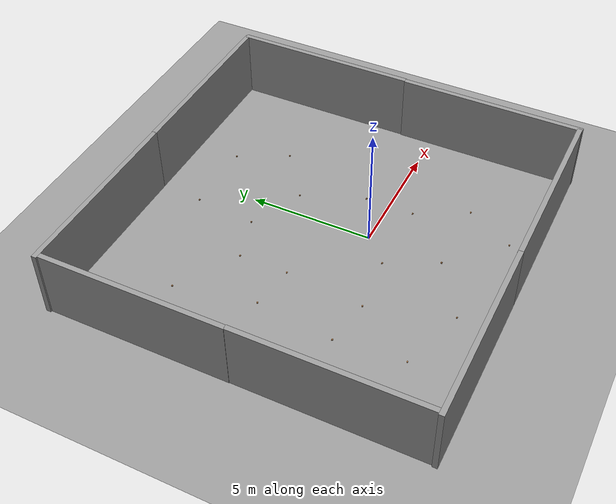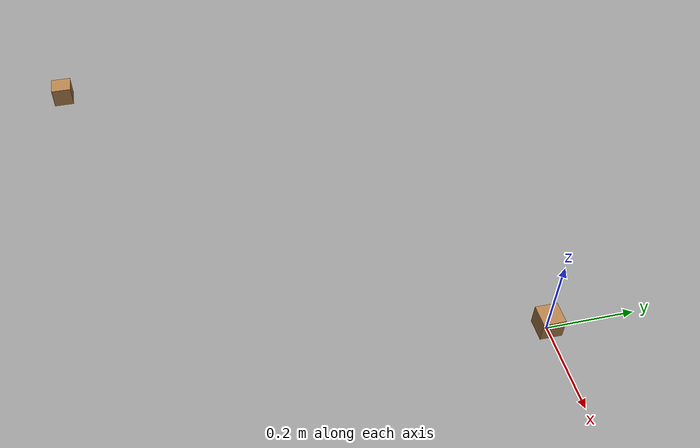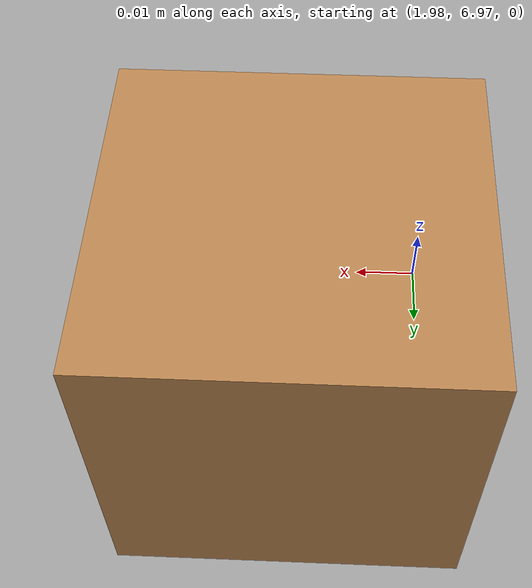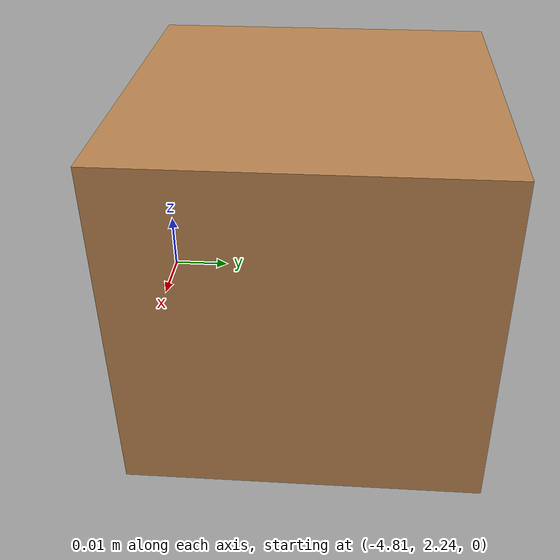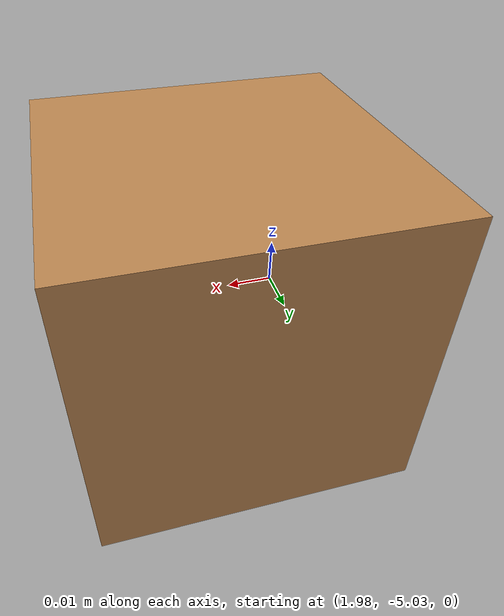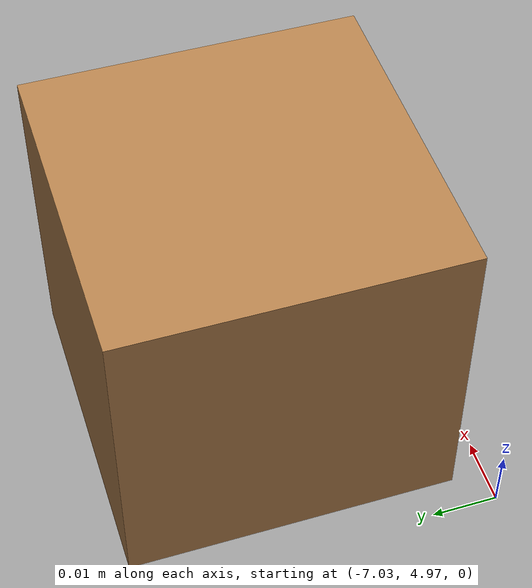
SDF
<sdf version="1.6">
 <world name="default">
  <light name="sun" type="directional">
   <pose>0 0 10 0 -0 0</pose>
   <diffuse>0.8 0.8 0.8 1</diffuse>
   <specular>0.2 0.2 0.2 1</specular>
   <attenuation>
    <range>1000</range>
    <constant>0.9</constant>
    <linear>0.01</linear>
    <quadratic>0.001</quadratic>
   </attenuation>
   <direction>0.5 0.1 -0.9</direction>
  </light>
  <scene><ambient>0.4 0.4 0.4 1</ambient><background>0.7 0.7 0.7 1</background><shadows>1</shadows></scene>
  <physics name="default_physics" default="0" type="ode">
   <max_step_size>0.01</max_step_size>
   <real_time_factor>1</real_time_factor>
   <real_time_update_rate>100</real_time_update_rate>
  </physics>
  <model name="ground_plane_0">
   <static>1</static>
   <link name="link">
    <collision name="collision">
     <geometry><plane><normal>0 0 1</normal><size>100 100</size></plane></geometry>
     <surface><friction><ode><mu>100</mu><mu2>50</mu2></ode></friction></surface>
    </collision>
    <visual name="visual">
     <cast_shadows>0</cast_shadows>
     <geometry><plane><normal>0 0 1</normal><size>100 100</size></plane></geometry>
     <material>
      <script><uri>file://media/materials/scripts/gazebo.material</uri><name>Gazebo/Grey</name></script>
     </material>
    </visual>
    <velocity_decay><linear>0</linear><angular>0</angular></velocity_decay>
   </link>
   <pose>0.497681 0 0 0 -0 0</pose>
  </model>
  <gravity>0 0 -9.8</gravity>
  <magnetic_field>6e-06 2.3e-05 -4.2e-05</magnetic_field>
  <atmosphere type="adiabatic"/>
  <spherical_coordinates>
   <surface_model>EARTH_WGS84</surface_model>
   <latitude_deg>0</latitude_deg>
   <longitude_deg>0</longitude_deg>
   <elevation>0</elevation>
   <heading_deg>0</heading_deg>
  </spherical_coordinates>
  <model name="grey_wall">
   <static>1</static>
   <link name="link">
    <pose>0 0 1.4 0 -0 0</pose>
    <collision name="collision"><geometry><box><size>7.5 0.2 2.8</size></box></geometry></collision>
    <visual name="visual">
     <cast_shadows>0</cast_shadows>
     <geometry><box><size>7.5 0.2 2.8</size></box></geometry>
     <material>
      <script>
       <uri>model://grey_wall/materials/scripts</uri>
       <uri>model://grey_wall/materials/textures</uri>
       <name>vrc/grey_wall</name>
      </script>
     </material>
    </visual>
   </link>
   <pose>2.77941 8.82009 0 0 -0 0</pose>
  </model>
  <model name="grey_wall_clone">
   <static>1</static>
   <link name="link">
    <pose>0 0 1.4 0 -0 0</pose>
    <collision name="collision"><geometry><box><size>7.5 0.2 2.8</size></box></geometry></collision>
    <visual name="visual">
     <cast_shadows>0</cast_shadows>
     <geometry><box><size>7.5 0.2 2.8</size></box></geometry>
     <material>
      <script>
       <uri>model://grey_wall/materials/scripts</uri>
       <uri>model://grey_wall/materials/textures</uri>
       <name>vrc/grey_wall</name>
      </script>
     </material>
    </visual>
   </link>
   <pose>-4.66103 8.81575 0 0 -0 0</pose>
  </model>
  <model name="grey_wall_clone_clone">
   <static>1</static>
   <link name="link">
    <pose>0 0 1.4 0 -0 0</pose>
    <collision name="collision"><geometry><box><size>7.5 0.2 2.8</size></box></geometry></collision>
    <visual name="visual">
     <cast_shadows>0</cast_shadows>
     <geometry><box><size>7.5 0.2 2.8</size></box></geometry>
     <material>
      <script>
       <uri>model://grey_wall/materials/scripts</uri>
       <uri>model://grey_wall/materials/textures</uri>
       <name>vrc/grey_wall</name>
      </script>
     </material>
    </visual>
   </link>
   <pose>-8.23984 5.15552 0 0 0 -1.56757</pose>
  </model>
  <model name="grey_wall_clone_clone_clone">
   <static>1</static>
   <link name="link">
    <pose>0 0 1.4 0 -0 0</pose>
    <collision name="collision"><geometry><box><size>7.5 0.2 2.8</size></box></geometry></collision>
    <visual name="visual">
     <cast_shadows>0</cast_shadows>
     <geometry><box><size>7.5 0.2 2.8</size></box></geometry>
     <material>
      <script>
       <uri>model://grey_wall/materials/scripts</uri>
       <uri>model://grey_wall/materials/textures</uri>
       <name>vrc/grey_wall</name>
      </script>
     </material>
    </visual>
   </link>
   <pose>-8.20187 -2.32331 0 0 0 -1.56757</pose>
  </model>
  <model name="grey_wall_clone_clone_0">
   <static>1</static>
   <link name="link">
    <pose>0 0 1.4 0 -0 0</pose>
    <collision name="collision"><geometry><box><size>7.5 0.2 2.8</size></box></geometry></collision>
    <visual name="visual">
     <cast_shadows>0</cast_shadows>
     <geometry><box><size>7.5 0.2 2.8</size></box></geometry>
     <material>
      <script>
       <uri>model://grey_wall/materials/scripts</uri>
       <uri>model://grey_wall/materials/textures</uri>
       <name>vrc/grey_wall</name>
      </script>
     </material>
    </visual>
   </link>
   <pose>-4.5932 -6.01124 0 0 -0 0</pose>
  </model>
  <model name="grey_wall_clone_clone_1">
   <static>1</static>
   <link name="link">
    <pose>0 0 1.4 0 -0 0</pose>
    <collision name="collision"><geometry><box><size>7.5 0.2 2.8</size></box></geometry></collision>
    <visual name="visual">
     <cast_shadows>0</cast_shadows>
     <geometry><box><size>7.5 0.2 2.8</size></box></geometry>
     <material>
      <script>
       <uri>model://grey_wall/materials/scripts</uri>
       <uri>model://grey_wall/materials/textures</uri>
       <name>vrc/grey_wall</name>
      </script>
     </material>
    </visual>
   </link>
   <pose>2.78521 -6.00736 0 0 -0 0</pose>
  </model>
  <model name="grey_wall_clone_clone_clone_clone">
   <static>1</static>
   <link name="link">
    <pose>0 0 1.4 0 -0 0</pose>
    <collision name="collision"><geometry><box><size>7.5 0.2 2.8</size></box></geometry></collision>
    <visual name="visual">
     <cast_shadows>0</cast_shadows>
     <geometry><box><size>7.5 0.2 2.8</size></box></geometry>
     <material>
      <script>
       <uri>model://grey_wall/materials/scripts</uri>
       <uri>model://grey_wall/materials/textures</uri>
       <name>vrc/grey_wall</name>
      </script>
     </material>
    </visual>
   </link>
   <pose>6.50789 -2.37357 0 0 0 -1.56757</pose>
  </model>
  <model name="grey_wall_clone_clone_clone_clone_0">
   <static>1</static>
   <link name="link">
    <pose>0 0 1.4 0 -0 0</pose>
    <collision name="collision"><geometry><box><size>7.5 0.2 2.8</size></box></geometry></collision>
    <visual name="visual">
     <cast_shadows>0</cast_shadows>
     <geometry><box><size>7.5 0.2 2.8</size></box></geometry>
     <material>
      <script>
       <uri>model://grey_wall/materials/scripts</uri>
       <uri>model://grey_wall/materials/textures</uri>
       <name>vrc/grey_wall</name>
      </script>
     </material>
    </visual>
   </link>
   <pose>6.51737 5.11667 0 0 0 -1.56757</pose>
  </model>
  <model name="wood_cube_5cm">
   <link name="link">
    <pose>0 0 0.025 0 -0 0</pose>
    <inertial>
     <mass>0.0565</mass>
     <inertia>
      <ixx>2.35417e-05</ixx>
      <ixy>0</ixy>
      <ixz>0</ixz>
      <iyy>2.35417e-05</iyy>
      <iyz>0</iyz>
      <izz>2.35417e-05</izz>
     </inertia>
    </inertial>
    <collision name="collision">
     <geometry><box><size>0.05 0.05 0.05</size></box></geometry>
     <surface>
      <contact>
       <poissons_ratio>0.347</poissons_ratio>
       <elastic_modulus>8.8e+09</elastic_modulus>
       <ode><kp>100000</kp><kd>1</kd><max_vel>1</max_vel><min_depth>0.001</min_depth></ode>
      </contact>
      <friction>
       <torsional>
        <coefficient>1</coefficient>
        <use_patch_radius>0</use_patch_radius>
        <surface_radius>0.05</surface_radius>
       </torsional>
      </friction>
     </surface>
    </collision>
    <visual name="visual">
     <geometry><box><size>0.05 0.05 0.05</size></box></geometry>
     <material>
      <script><uri>file://media/materials/scripts/gazebo.material</uri><name>Gazebo/Wood</name></script>
     </material>
    </visual>
   </link>
   <pose>-5.43837 5.47956 -0.001001 0 -0 0</pose>
  </model>
  <model name="wood_cube_5cm_clone">
   <link name="link">
    <pose>0 0 0.025 0 -0 0</pose>
    <inertial>
     <mass>0.0565</mass>
     <inertia>
      <ixx>2.35417e-05</ixx>
      <ixy>0</ixy>
      <ixz>0</ixz>
      <iyy>2.35417e-05</iyy>
      <iyz>0</iyz>
      <izz>2.35417e-05</izz>
     </inertia>
    </inertial>
    <collision name="collision">
     <geometry><box><size>0.05 0.05 0.05</size></box></geometry>
     <surface>
      <contact>
       <poissons_ratio>0.347</poissons_ratio>
       <elastic_modulus>8.8e+09</elastic_modulus>
       <ode><kp>100000</kp><kd>1</kd><max_vel>1</max_vel><min_depth>0.001</min_depth></ode>
      </contact>
      <friction>
       <torsional>
        <coefficient>1</coefficient>
        <use_patch_radius>0</use_patch_radius>
        <surface_radius>0.05</surface_radius>
       </torsional>
      </friction>
     </surface>
    </collision>
    <visual name="visual">
     <geometry><box><size>0.05 0.05 0.05</size></box></geometry>
     <material>
      <script><uri>file://media/materials/scripts/gazebo.material</uri><name>Gazebo/Wood</name></script>
     </material>
    </visual>
   </link>
   <pose>-4.78134 2.26895 -0.001001 0 -0 0</pose>
  </model>
  <model name="wood_cube_5cm_clone_0">
   <link name="link">
    <pose>0 0 0.025 0 -0 0</pose>
    <inertial>
     <mass>0.0565</mass>
     <inertia>
      <ixx>2.35417e-05</ixx>
      <ixy>0</ixy>
      <ixz>0</ixz>
      <iyy>2.35417e-05</iyy>
      <iyz>0</iyz>
      <izz>2.35417e-05</izz>
     </inertia>
    </inertial>
    <collision name="collision">
     <geometry><box><size>0.05 0.05 0.05</size></box></geometry>
     <surface>
      <contact>
       <poissons_ratio>0.347</poissons_ratio>
       <elastic_modulus>8.8e+09</elastic_modulus>
       <ode><kp>100000</kp><kd>1</kd><max_vel>1</max_vel><min_depth>0.001</min_depth></ode>
      </contact>
      <friction>
       <torsional>
        <coefficient>1</coefficient>
        <use_patch_radius>0</use_patch_radius>
        <surface_radius>0.05</surface_radius>
       </torsional>
      </friction>
     </surface>
    </collision>
    <visual name="visual">
     <geometry><box><size>0.05 0.05 0.05</size></box></geometry>
     <material>
      <script><uri>file://media/materials/scripts/gazebo.material</uri><name>Gazebo/Wood</name></script>
     </material>
    </visual>
   </link>
   <pose>-4.89154 -3.65071 -0.001001 0 -0 0</pose>
  </model>
  <model name="wood_cube_5cm_clone_1">
   <link name="link">
    <pose>0 0 0.025 0 -0 0</pose>
    <inertial>
     <mass>0.0565</mass>
     <inertia>
      <ixx>2.35417e-05</ixx>
      <ixy>0</ixy>
      <ixz>0</ixz>
      <iyy>2.35417e-05</iyy>
      <iyz>0</iyz>
      <izz>2.35417e-05</izz>
     </inertia>
    </inertial>
    <collision name="collision">
     <geometry><box><size>0.05 0.05 0.05</size></box></geometry>
     <surface>
      <contact>
       <poissons_ratio>0.347</poissons_ratio>
       <elastic_modulus>8.8e+09</elastic_modulus>
       <ode><kp>100000</kp><kd>1</kd><max_vel>1</max_vel><min_depth>0.001</min_depth></ode>
      </contact>
      <friction>
       <torsional>
        <coefficient>1</coefficient>
        <use_patch_radius>0</use_patch_radius>
        <surface_radius>0.05</surface_radius>
       </torsional>
      </friction>
     </surface>
    </collision>
    <visual name="visual">
     <geometry><box><size>0.05 0.05 0.05</size></box></geometry>
     <material>
      <script><uri>file://media/materials/scripts/gazebo.material</uri><name>Gazebo/Wood</name></script>
     </material>
    </visual>
   </link>
   <pose>-2.28675 -4.47799 -0.001001 0 -0 0</pose>
  </model>
  <model name="wood_cube_5cm_clone_2">
   <link name="link">
    <pose>0 0 0.025 0 -0 0</pose>
    <inertial>
     <mass>0.0565</mass>
     <inertia>
      <ixx>2.35417e-05</ixx>
      <ixy>0</ixy>
      <ixz>0</ixz>
      <iyy>2.35417e-05</iyy>
      <iyz>0</iyz>
      <izz>2.35417e-05</izz>
     </inertia>
    </inertial>
    <collision name="collision">
     <geometry><box><size>0.05 0.05 0.05</size></box></geometry>
     <surface>
      <contact>
       <poissons_ratio>0.347</poissons_ratio>
       <elastic_modulus>8.8e+09</elastic_modulus>
       <ode><kp>100000</kp><kd>1</kd><max_vel>1</max_vel><min_depth>0.001</min_depth></ode>
      </contact>
      <friction>
       <torsional>
        <coefficient>1</coefficient>
        <use_patch_radius>0</use_patch_radius>
        <surface_radius>0.05</surface_radius>
       </torsional>
      </friction>
     </surface>
    </collision>
    <visual name="visual">
     <geometry><box><size>0.05 0.05 0.05</size></box></geometry>
     <material>
      <script><uri>file://media/materials/scripts/gazebo.material</uri><name>Gazebo/Wood</name></script>
     </material>
    </visual>
   </link>
   <pose>-3.2656 -1.215 -0.001001 0 -0 0</pose>
  </model>
  <model name="wood_cube_5cm_clone_3">
   <link name="link">
    <pose>0 0 0.025 0 -0 0</pose>
    <inertial>
     <mass>0.0565</mass>
     <inertia>
      <ixx>2.35417e-05</ixx>
      <ixy>0</ixy>
      <ixz>0</ixz>
      <iyy>2.35417e-05</iyy>
      <iyz>0</iyz>
      <izz>2.35417e-05</izz>
     </inertia>
    </inertial>
    <collision name="collision">
     <geometry><box><size>0.05 0.05 0.05</size></box></geometry>
     <surface>
      <contact>
       <poissons_ratio>0.347</poissons_ratio>
       <elastic_modulus>8.8e+09</elastic_modulus>
       <ode><kp>100000</kp><kd>1</kd><max_vel>1</max_vel><min_depth>0.001</min_depth></ode>
      </contact>
      <friction>
       <torsional>
        <coefficient>1</coefficient>
        <use_patch_radius>0</use_patch_radius>
        <surface_radius>0.05</surface_radius>
       </torsional>
      </friction>
     </surface>
    </collision>
    <visual name="visual">
     <geometry><box><size>0.05 0.05 0.05</size></box></geometry>
     <material>
      <script><uri>file://media/materials/scripts/gazebo.material</uri><name>Gazebo/Wood</name></script>
     </material>
    </visual>
   </link>
   <pose>-1.2102 4.51377 -0.001001 0 -0 0</pose>
  </model>
  <model name="wood_cube_5cm_clone_4">
   <link name="link">
    <pose>0 0 0.025 0 -0 0</pose>
    <inertial>
     <mass>0.0565</mass>
     <inertia>
      <ixx>2.35417e-05</ixx>
      <ixy>0</ixy>
      <ixz>0</ixz>
      <iyy>2.35417e-05</iyy>
      <iyz>0</iyz>
      <izz>2.35417e-05</izz>
     </inertia>
    </inertial>
    <collision name="collision">
     <geometry><box><size>0.05 0.05 0.05</size></box></geometry>
     <surface>
      <contact>
       <poissons_ratio>0.347</poissons_ratio>
       <elastic_modulus>8.8e+09</elastic_modulus>
       <ode><kp>100000</kp><kd>1</kd><max_vel>1</max_vel><min_depth>0.001</min_depth></ode>
      </contact>
      <friction>
       <torsional>
        <coefficient>1</coefficient>
        <use_patch_radius>0</use_patch_radius>
        <surface_radius>0.05</surface_radius>
       </torsional>
      </friction>
     </surface>
    </collision>
    <visual name="visual">
     <geometry><box><size>0.05 0.05 0.05</size></box></geometry>
     <material>
      <script><uri>file://media/materials/scripts/gazebo.material</uri><name>Gazebo/Wood</name></script>
     </material>
    </visual>
   </link>
   <pose>-3 4 -0.001001 0 -0 0</pose>
  </model>
  <model name="wood_cube_5cm_clone_5">
   <link name="link">
    <pose>0 0 0.025 0 -0 0</pose>
    <inertial>
     <mass>0.0565</mass>
     <inertia>
      <ixx>2.35417e-05</ixx>
      <ixy>0</ixy>
      <ixz>0</ixz>
      <iyy>2.35417e-05</iyy>
      <iyz>0</iyz>
      <izz>2.35417e-05</izz>
     </inertia>
    </inertial>
    <collision name="collision">
     <geometry><box><size>0.05 0.05 0.05</size></box></geometry>
     <surface>
      <contact>
       <poissons_ratio>0.347</poissons_ratio>
       <elastic_modulus>8.8e+09</elastic_modulus>
       <ode><kp>100000</kp><kd>1</kd><max_vel>1</max_vel><min_depth>0.001</min_depth></ode>
      </contact>
      <friction>
       <torsional>
        <coefficient>1</coefficient>
        <use_patch_radius>0</use_patch_radius>
        <surface_radius>0.05</surface_radius>
       </torsional>
      </friction>
     </surface>
    </collision>
    <visual name="visual">
     <geometry><box><size>0.05 0.05 0.05</size></box></geometry>
     <material>
      <script><uri>file://media/materials/scripts/gazebo.material</uri><name>Gazebo/Wood</name></script>
     </material>
    </visual>
   </link>
   <pose>0 0 -0.001001 0 -0 0</pose>
  </model>
  <model name="wood_cube_5cm_clone_6">
   <link name="link">
    <pose>0 0 0.025 0 -0 0</pose>
    <inertial>
     <mass>0.0565</mass>
     <inertia>
      <ixx>2.35417e-05</ixx>
      <ixy>0</ixy>
      <ixz>0</ixz>
      <iyy>2.35417e-05</iyy>
      <iyz>0</iyz>
      <izz>2.35417e-05</izz>
     </inertia>
    </inertial>
    <collision name="collision">
     <geometry><box><size>0.05 0.05 0.05</size></box></geometry>
     <surface>
      <contact>
       <poissons_ratio>0.347</poissons_ratio>
       <elastic_modulus>8.8e+09</elastic_modulus>
       <ode><kp>100000</kp><kd>1</kd><max_vel>1</max_vel><min_depth>0.001</min_depth></ode>
      </contact>
      <friction>
       <torsional>
        <coefficient>1</coefficient>
        <use_patch_radius>0</use_patch_radius>
        <surface_radius>0.05</surface_radius>
       </torsional>
      </friction>
     </surface>
    </collision>
    <visual name="visual">
     <geometry><box><size>0.05 0.05 0.05</size></box></geometry>
     <material>
      <script><uri>file://media/materials/scripts/gazebo.material</uri><name>Gazebo/Wood</name></script>
     </material>
    </visual>
   </link>
   <pose>0 -3 -0.001001 0 -0 0</pose>
  </model>
  <model name="wood_cube_5cm_clone_7">
   <link name="link">
    <pose>0 0 0.025 0 -0 0</pose>
    <inertial>
     <mass>0.0565</mass>
     <inertia>
      <ixx>2.35417e-05</ixx>
      <ixy>0</ixy>
      <ixz>0</ixz>
      <iyy>2.35417e-05</iyy>
      <iyz>0</iyz>
      <izz>2.35417e-05</izz>
     </inertia>
    </inertial>
    <collision name="collision">
     <geometry><box><size>0.05 0.05 0.05</size></box></geometry>
     <surface>
      <contact>
       <poissons_ratio>0.347</poissons_ratio>
       <elastic_modulus>8.8e+09</elastic_modulus>
       <ode><kp>100000</kp><kd>1</kd><max_vel>1</max_vel><min_depth>0.001</min_depth></ode>
      </contact>
      <friction>
       <torsional>
        <coefficient>1</coefficient>
        <use_patch_radius>0</use_patch_radius>
        <surface_radius>0.05</surface_radius>
       </torsional>
      </friction>
     </surface>
    </collision>
    <visual name="visual">
     <geometry><box><size>0.05 0.05 0.05</size></box></geometry>
     <material>
      <script><uri>file://media/materials/scripts/gazebo.material</uri><name>Gazebo/Wood</name></script>
     </material>
    </visual>
   </link>
   <pose>2 -5 -0.001001 0 -0 0</pose>
  </model>
  <model name="wood_cube_5cm_clone_8">
   <link name="link">
    <pose>0 0 0.025 0 -0 0</pose>
    <inertial>
     <mass>0.0565</mass>
     <inertia>
      <ixx>2.35417e-05</ixx>
      <ixy>0</ixy>
      <ixz>0</ixz>
      <iyy>2.35417e-05</iyy>
      <iyz>0</iyz>
      <izz>2.35417e-05</izz>
     </inertia>
    </inertial>
    <collision name="collision">
     <geometry><box><size>0.05 0.05 0.05</size></box></geometry>
     <surface>
      <contact>
       <poissons_ratio>0.347</poissons_ratio>
       <elastic_modulus>8.8e+09</elastic_modulus>
       <ode><kp>100000</kp><kd>1</kd><max_vel>1</max_vel><min_depth>0.001</min_depth></ode>
      </contact>
      <friction>
       <torsional>
        <coefficient>1</coefficient>
        <use_patch_radius>0</use_patch_radius>
        <surface_radius>0.05</surface_radius>
       </torsional>
      </friction>
     </surface>
    </collision>
    <visual name="visual">
     <geometry><box><size>0.05 0.05 0.05</size></box></geometry>
     <material>
      <script><uri>file://media/materials/scripts/gazebo.material</uri><name>Gazebo/Wood</name></script>
     </material>
    </visual>
   </link>
   <pose>2 -1 -0.001001 0 -0 0</pose>
  </model>
  <model name="wood_cube_5cm_clone_9">
   <link name="link">
    <pose>0 0 0.025 0 -0 0</pose>
    <inertial>
     <mass>0.0565</mass>
     <inertia>
      <ixx>2.35417e-05</ixx>
      <ixy>0</ixy>
      <ixz>0</ixz>
      <iyy>2.35417e-05</iyy>
      <iyz>0</iyz>
      <izz>2.35417e-05</izz>
     </inertia>
    </inertial>
    <collision name="collision">
     <geometry><box><size>0.05 0.05 0.05</size></box></geometry>
     <surface>
      <contact>
       <poissons_ratio>0.347</poissons_ratio>
       <elastic_modulus>8.8e+09</elastic_modulus>
       <ode><kp>100000</kp><kd>1</kd><max_vel>1</max_vel><min_depth>0.001</min_depth></ode>
      </contact>
      <friction>
       <torsional>
        <coefficient>1</coefficient>
        <use_patch_radius>0</use_patch_radius>
        <surface_radius>0.05</surface_radius>
       </torsional>
      </friction>
     </surface>
    </collision>
    <visual name="visual">
     <geometry><box><size>0.05 0.05 0.05</size></box></geometry>
     <material>
      <script><uri>file://media/materials/scripts/gazebo.material</uri><name>Gazebo/Wood</name></script>
     </material>
    </visual>
   </link>
   <pose>-1 -1 -0.001001 0 -0 0</pose>
  </model>
  <model name="wood_cube_5cm_clone_10">
   <link name="link">
    <pose>0 0 0.025 0 -0 0</pose>
    <inertial>
     <mass>0.0565</mass>
     <inertia>
      <ixx>2.35417e-05</ixx>
      <ixy>0</ixy>
      <ixz>0</ixz>
      <iyy>2.35417e-05</iyy>
      <iyz>0</iyz>
      <izz>2.35417e-05</izz>
     </inertia>
    </inertial>
    <collision name="collision">
     <geometry><box><size>0.05 0.05 0.05</size></box></geometry>
     <surface>
      <contact>
       <poissons_ratio>0.347</poissons_ratio>
       <elastic_modulus>8.8e+09</elastic_modulus>
       <ode><kp>100000</kp><kd>1</kd><max_vel>1</max_vel><min_depth>0.001</min_depth></ode>
      </contact>
      <friction>
       <torsional>
        <coefficient>1</coefficient>
        <use_patch_radius>0</use_patch_radius>
        <surface_radius>0.05</surface_radius>
       </torsional>
      </friction>
     </surface>
    </collision>
    <visual name="visual">
     <geometry><box><size>0.05 0.05 0.05</size></box></geometry>
     <material>
      <script><uri>file://media/materials/scripts/gazebo.material</uri><name>Gazebo/Wood</name></script>
     </material>
    </visual>
   </link>
   <pose>-3 2 -0.001001 0 -0 0</pose>
  </model>
  <model name="wood_cube_5cm_clone_11">
   <link name="link">
    <pose>0 0 0.025 0 -0 0</pose>
    <inertial>
     <mass>0.0565</mass>
     <inertia>
      <ixx>2.35417e-05</ixx>
      <ixy>0</ixy>
      <ixz>0</ixz>
      <iyy>2.35417e-05</iyy>
      <iyz>0</iyz>
      <izz>2.35417e-05</izz>
     </inertia>
    </inertial>
    <collision name="collision">
     <geometry><box><size>0.05 0.05 0.05</size></box></geometry>
     <surface>
      <contact>
       <poissons_ratio>0.347</poissons_ratio>
       <elastic_modulus>8.8e+09</elastic_modulus>
       <ode><kp>100000</kp><kd>1</kd><max_vel>1</max_vel><min_depth>0.001</min_depth></ode>
      </contact>
      <friction>
       <torsional>
        <coefficient>1</coefficient>
        <use_patch_radius>0</use_patch_radius>
        <surface_radius>0.05</surface_radius>
       </torsional>
      </friction>
     </surface>
    </collision>
    <visual name="visual">
     <geometry><box><size>0.05 0.05 0.05</size></box></geometry>
     <material>
      <script><uri>file://media/materials/scripts/gazebo.material</uri><name>Gazebo/Wood</name></script>
     </material>
    </visual>
   </link>
   <pose>1 3.50477 -0.001001 0 -0 0</pose>
  </model>
  <model name="wood_cube_5cm_clone_12">
   <link name="link">
    <pose>0 0 0.025 0 -0 0</pose>
    <inertial>
     <mass>0.0565</mass>
     <inertia>
      <ixx>2.35417e-05</ixx>
      <ixy>0</ixy>
      <ixz>0</ixz>
      <iyy>2.35417e-05</iyy>
      <iyz>0</iyz>
      <izz>2.35417e-05</izz>
     </inertia>
    </inertial>
    <collision name="collision">
     <geometry><box><size>0.05 0.05 0.05</size></box></geometry>
     <surface>
      <contact>
       <poissons_ratio>0.347</poissons_ratio>
       <elastic_modulus>8.8e+09</elastic_modulus>
       <ode><kp>100000</kp><kd>1</kd><max_vel>1</max_vel><min_depth>0.001</min_depth></ode>
      </contact>
      <friction>
       <torsional>
        <coefficient>1</coefficient>
        <use_patch_radius>0</use_patch_radius>
        <surface_radius>0.05</surface_radius>
       </torsional>
      </friction>
     </surface>
    </collision>
    <visual name="visual">
     <geometry><box><size>0.05 0.05 0.05</size></box></geometry>
     <material>
      <script><uri>file://media/materials/scripts/gazebo.material</uri><name>Gazebo/Wood</name></script>
     </material>
    </visual>
   </link>
   <pose>-1 7 -0.001001 0 -0 0</pose>
  </model>
  <model name="wood_cube_5cm_clone_13">
   <link name="link">
    <pose>0 0 0.025 0 -0 0</pose>
    <inertial>
     <mass>0.0565</mass>
     <inertia>
      <ixx>2.35417e-05</ixx>
      <ixy>0</ixy>
      <ixz>0</ixz>
      <iyy>2.35417e-05</iyy>
      <iyz>0</iyz>
      <izz>2.35417e-05</izz>
     </inertia>
    </inertial>
    <collision name="collision">
     <geometry><box><size>0.05 0.05 0.05</size></box></geometry>
     <surface>
      <contact>
       <poissons_ratio>0.347</poissons_ratio>
       <elastic_modulus>8.8e+09</elastic_modulus>
       <ode><kp>100000</kp><kd>1</kd><max_vel>1</max_vel><min_depth>0.001</min_depth></ode>
      </contact>
      <friction>
       <torsional>
        <coefficient>1</coefficient>
        <use_patch_radius>0</use_patch_radius>
        <surface_radius>0.05</surface_radius>
       </torsional>
      </friction>
     </surface>
    </collision>
    <visual name="visual">
     <geometry><box><size>0.05 0.05 0.05</size></box></geometry>
     <material>
      <script><uri>file://media/materials/scripts/gazebo.material</uri><name>Gazebo/Wood</name></script>
     </material>
    </visual>
   </link>
   <pose>2 7 -0.001001 0 -0 0</pose>
  </model>
  <model name="wood_cube_5cm_clone_14">
   <link name="link">
    <pose>0 0 0.025 0 -0 0</pose>
    <inertial>
     <mass>0.0565</mass>
     <inertia>
      <ixx>2.35417e-05</ixx>
      <ixy>0</ixy>
      <ixz>0</ixz>
      <iyy>2.35417e-05</iyy>
      <iyz>0</iyz>
      <izz>2.35417e-05</izz>
     </inertia>
    </inertial>
    <collision name="collision">
     <geometry><box><size>0.05 0.05 0.05</size></box></geometry>
     <surface>
      <contact>
       <poissons_ratio>0.347</poissons_ratio>
       <elastic_modulus>8.8e+09</elastic_modulus>
       <ode><kp>100000</kp><kd>1</kd><max_vel>1</max_vel><min_depth>0.001</min_depth></ode>
      </contact>
      <friction>
       <torsional>
        <coefficient>1</coefficient>
        <use_patch_radius>0</use_patch_radius>
        <surface_radius>0.05</surface_radius>
       </torsional>
      </friction>
     </surface>
    </collision>
    <visual name="visual">
     <geometry><box><size>0.05 0.05 0.05</size></box></geometry>
     <material>
      <script><uri>file://media/materials/scripts/gazebo.material</uri><name>Gazebo/Wood</name></script>
     </material>
    </visual>
   </link>
   <pose>3 5 -0.000935 8.6e-05 -8.7e-05 -0</pose>
  </model>
  <model name="wood_cube_5cm_clone_15">
   <link name="link">
    <pose>0 0 0.025 0 -0 0</pose>
    <inertial>
     <mass>0.0565</mass>
     <inertia>
      <ixx>2.35417e-05</ixx>
      <ixy>0</ixy>
      <ixz>0</ixz>
      <iyy>2.35417e-05</iyy>
      <iyz>0</iyz>
      <izz>2.35417e-05</izz>
     </inertia>
    </inertial>
    <collision name="collision">
     <geometry><box><size>0.05 0.05 0.05</size></box></geometry>
     <surface>
      <contact>
       <poissons_ratio>0.347</poissons_ratio>
       <elastic_modulus>8.8e+09</elastic_modulus>
       <ode><kp>100000</kp><kd>1</kd><max_vel>1</max_vel><min_depth>0.001</min_depth></ode>
      </contact>
      <friction>
       <torsional>
        <coefficient>1</coefficient>
        <use_patch_radius>0</use_patch_radius>
        <surface_radius>0.05</surface_radius>
       </torsional>
      </friction>
     </surface>
    </collision>
    <visual name="visual">
     <geometry><box><size>0.05 0.05 0.05</size></box></geometry>
     <material>
      <script><uri>file://media/materials/scripts/gazebo.material</uri><name>Gazebo/Wood</name></script>
     </material>
    </visual>
   </link>
   <pose>2 1 -0.000822 8.2e-05 -8.3e-05 -0</pose>
  </model>
  <model name="wood_cube_5cm_clone_16">
   <link name="link">
    <pose>0 0 0.025 0 -0 0</pose>
    <inertial>
     <mass>0.0565</mass>
     <inertia>
      <ixx>2.35417e-05</ixx>
      <ixy>0</ixy>
      <ixz>0</ixz>
      <iyy>2.35417e-05</iyy>
      <iyz>0</iyz>
      <izz>2.35417e-05</izz>
     </inertia>
    </inertial>
    <collision name="collision">
     <geometry><box><size>0.05 0.05 0.05</size></box></geometry>
     <surface>
      <contact>
       <poissons_ratio>0.347</poissons_ratio>
       <elastic_modulus>8.8e+09</elastic_modulus>
       <ode><kp>100000</kp><kd>1</kd><max_vel>1</max_vel><min_depth>0.001</min_depth></ode>
      </contact>
      <friction>
       <torsional>
        <coefficient>1</coefficient>
        <use_patch_radius>0</use_patch_radius>
        <surface_radius>0.05</surface_radius>
       </torsional>
      </friction>
     </surface>
    </collision>
    <visual name="visual">
     <geometry><box><size>0.05 0.05 0.05</size></box></geometry>
     <material>
      <script><uri>file://media/materials/scripts/gazebo.material</uri><name>Gazebo/Wood</name></script>
     </material>
    </visual>
   </link>
   <pose>3.06935 -3.04097 -0.000685 7.8e-05 -7.8e-05 0</pose>
  </model>
  <model name="wood_cube_5cm_clone_17">
   <link name="link">
    <pose>0 0 0.025 0 -0 0</pose>
    <inertial>
     <mass>0.0565</mass>
     <inertia>
      <ixx>2.35417e-05</ixx>
      <ixy>0</ixy>
      <ixz>0</ixz>
      <iyy>2.35417e-05</iyy>
      <iyz>0</iyz>
      <izz>2.35417e-05</izz>
     </inertia>
    </inertial>
    <collision name="collision">
     <geometry><box><size>0.05 0.05 0.05</size></box></geometry>
     <surface>
      <contact>
       <poissons_ratio>0.347</poissons_ratio>
       <elastic_modulus>8.8e+09</elastic_modulus>
       <ode><kp>100000</kp><kd>1</kd><max_vel>1</max_vel><min_depth>0.001</min_depth></ode>
      </contact>
      <friction>
       <torsional>
        <coefficient>1</coefficient>
        <use_patch_radius>0</use_patch_radius>
        <surface_radius>0.05</surface_radius>
       </torsional>
      </friction>
     </surface>
    </collision>
    <visual name="visual">
     <geometry><box><size>0.05 0.05 0.05</size></box></geometry>
     <material>
      <script><uri>file://media/materials/scripts/gazebo.material</uri><name>Gazebo/Wood</name></script>
     </material>
    </visual>
   </link>
   <pose>-6.64236 -0.221886 -0.000548 7.3e-05 -7.3e-05 0</pose>
  </model>
  <model name="wood_cube_5cm_clone_18">
   <link name="link">
    <pose>0 0 0.025 0 -0 0</pose>
    <inertial>
     <mass>0.0565</mass>
     <inertia>
      <ixx>2.35417e-05</ixx>
      <ixy>0</ixy>
      <ixz>0</ixz>
      <iyy>2.35417e-05</iyy>
      <iyz>0</iyz>
      <izz>2.35417e-05</izz>
     </inertia>
    </inertial>
    <collision name="collision">
     <geometry><box><size>0.05 0.05 0.05</size></box></geometry>
     <surface>
      <contact>
       <poissons_ratio>0.347</poissons_ratio>
       <elastic_modulus>8.8e+09</elastic_modulus>
       <ode><kp>100000</kp><kd>1</kd><max_vel>1</max_vel><min_depth>0.001</min_depth></ode>
      </contact>
      <friction>
       <torsional>
        <coefficient>1</coefficient>
        <use_patch_radius>0</use_patch_radius>
        <surface_radius>0.05</surface_radius>
       </torsional>
      </friction>
     </surface>
    </collision>
    <visual name="visual">
     <geometry><box><size>0.05 0.05 0.05</size></box></geometry>
     <material>
      <script><uri>file://media/materials/scripts/gazebo.material</uri><name>Gazebo/Wood</name></script>
     </material>
    </visual>
   </link>
   <pose>-5.14267 -0.916817 -0.000412 6.8e-05 -6.8e-05 -0</pose>
  </model>
  <model name="wood_cube_5cm_clone_19">
   <link name="link">
    <pose>0 0 0.025 0 -0 0</pose>
    <inertial>
     <mass>0.0565</mass>
     <inertia>
      <ixx>2.35417e-05</ixx>
      <ixy>0</ixy>
      <ixz>0</ixz>
      <iyy>2.35417e-05</iyy>
      <iyz>0</iyz>
      <izz>2.35417e-05</izz>
     </inertia>
    </inertial>
    <collision name="collision">
     <geometry><box><size>0.05 0.05 0.05</size></box></geometry>
     <surface>
      <contact>
       <poissons_ratio>0.347</poissons_ratio>
       <elastic_modulus>8.8e+09</elastic_modulus>
       <ode><kp>100000</kp><kd>1</kd><max_vel>1</max_vel><min_depth>0.001</min_depth></ode>
      </contact>
      <friction>
       <torsional>
        <coefficient>1</coefficient>
        <use_patch_radius>0</use_patch_radius>
        <surface_radius>0.05</surface_radius>
       </torsional>
      </friction>
     </surface>
    </collision>
    <visual name="visual">
     <geometry><box><size>0.05 0.05 0.05</size></box></geometry>
     <material>
      <script><uri>file://media/materials/scripts/gazebo.material</uri><name>Gazebo/Wood</name></script>
     </material>
    </visual>
   </link>
   <pose>-7 5 -0.000275 6.4e-05 -6.4e-05 0</pose>
  </model>
 </world>
</sdf>
